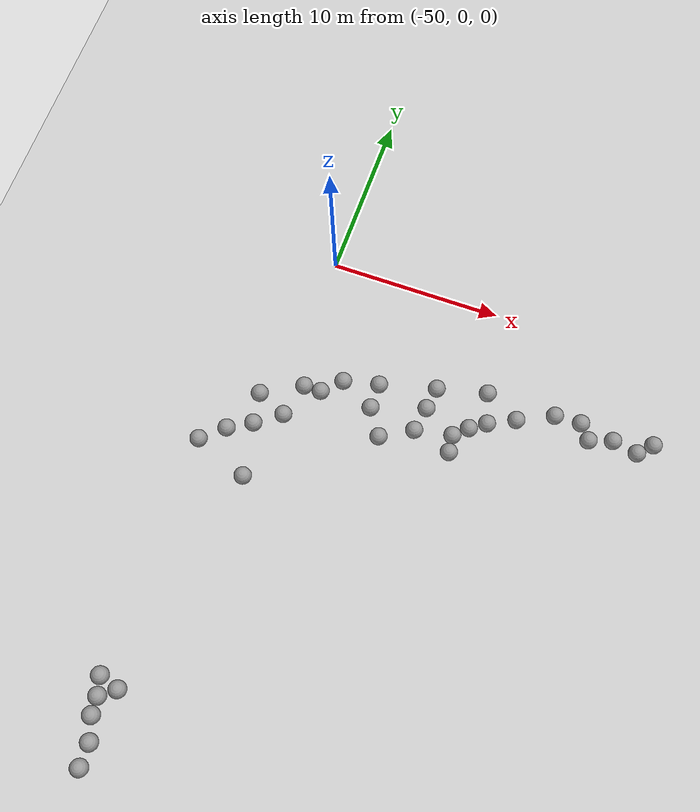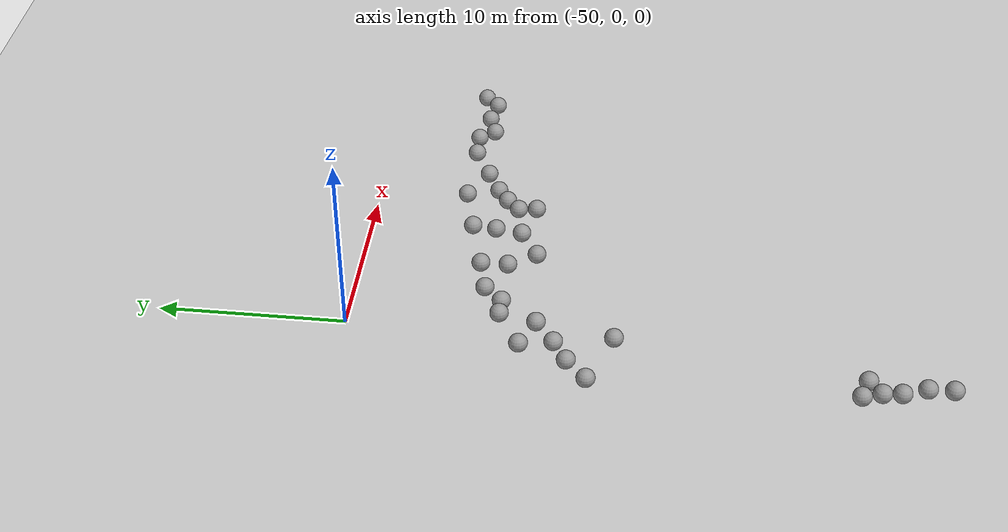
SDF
<sdf version="1.6">
 <world name="default">
  <model name="ground_plane">
   <static>1</static>
   <link name="link">
    <collision name="collision">
     <geometry><plane><normal>0 0 1</normal><size>100 100</size></plane></geometry>
     <surface><friction><ode><mu>100</mu><mu2>50</mu2></ode></friction></surface>
    </collision>
    <visual name="visual">
     <cast_shadows>0</cast_shadows>
     <geometry><plane><normal>0 0 1</normal><size>100 100</size></plane></geometry>
     <material>
      <script><uri>file://media/materials/scripts/gazebo.material</uri><name>Gazebo/Grey</name></script>
     </material>
    </visual>
   </link>
  </model>
  <model name="unit_sphere_0_clone_60">
   <pose>-52.4564 -31.3153 0.5 0 -0 0</pose>
   <link name="link">
    <inertial>
     <mass>1</mass>
     <inertia><ixx>0.1</ixx><ixy>0</ixy><ixz>0</ixz><iyy>0.1</iyy><iyz>0</iyz><izz>0.1</izz></inertia>
    </inertial>
    <collision name="collision"><geometry><sphere><radius>0.5</radius></sphere></geometry></collision>
    <visual name="visual">
     <geometry><sphere><radius>0.5</radius></sphere></geometry>
     <material>
      <script><name>Gazebo/Grey</name><uri>file://media/materials/scripts/gazebo.material</uri></script>
     </material>
    </visual>
   </link>
  </model>
  <model name="unit_sphere_0_clone_62">
   <pose>-51.2221 -9.25132 0.5 0 -0 0</pose>
   <link name="link">
    <inertial>
     <mass>1</mass>
     <inertia><ixx>0.1</ixx><ixy>0</ixy><ixz>0</ixz><iyy>0.1</iyy><iyz>0</iyz><izz>0.1</izz></inertia>
    </inertial>
    <collision name="collision"><geometry><sphere><radius>0.5</radius></sphere></geometry></collision>
    <visual name="visual">
     <geometry><sphere><radius>0.5</radius></sphere></geometry>
     <material>
      <script><name>Gazebo/Grey</name><uri>file://media/materials/scripts/gazebo.material</uri></script>
     </material>
    </visual>
   </link>
  </model>
  <model name="unit_sphere_0_clone_63">
   <pose>-42.2363 -8.45977 0.5 0 -0 0</pose>
   <link name="link">
    <inertial>
     <mass>1</mass>
     <inertia><ixx>0.1</ixx><ixy>0</ixy><ixz>0</ixz><iyy>0.1</iyy><iyz>0</iyz><izz>0.1</izz></inertia>
    </inertial>
    <collision name="collision"><geometry><sphere><radius>0.5</radius></sphere></geometry></collision>
    <visual name="visual">
     <geometry><sphere><radius>0.5</radius></sphere></geometry>
     <material>
      <script><name>Gazebo/Grey</name><uri>file://media/materials/scripts/gazebo.material</uri></script>
     </material>
    </visual>
   </link>
  </model>
  <model name="unit_sphere_0_clone_64">
   <pose>-31.5345 -5.4075 0.5 0 -0 0</pose>
   <link name="link">
    <inertial>
     <mass>1</mass>
     <inertia><ixx>0.1</ixx><ixy>0</ixy><ixz>0</ixz><iyy>0.1</iyy><iyz>0</iyz><izz>0.1</izz></inertia>
    </inertial>
    <collision name="collision"><geometry><sphere><radius>0.5</radius></sphere></geometry></collision>
    <visual name="visual">
     <geometry><sphere><radius>0.5</radius></sphere></geometry>
     <material>
      <script><name>Gazebo/Grey</name><uri>file://media/materials/scripts/gazebo.material</uri></script>
     </material>
    </visual>
   </link>
  </model>
  <model name="unit_sphere_0_clone_83">
   <pose>-52.1969 -27.0734 0.5 -0.047099 0.051382 -0.026603</pose>
   <link name="link">
    <inertial>
     <mass>1</mass>
     <inertia><ixx>0.1</ixx><ixy>0</ixy><ixz>0</ixz><iyy>0.1</iyy><iyz>0</iyz><izz>0.1</izz></inertia>
    </inertial>
    <collision name="collision"><geometry><sphere><radius>0.5</radius></sphere></geometry></collision>
    <visual name="visual">
     <geometry><sphere><radius>0.5</radius></sphere></geometry>
     <material>
      <script><name>Gazebo/Grey</name><uri>file://media/materials/scripts/gazebo.material</uri></script>
     </material>
    </visual>
   </link>
  </model>
  <model name="unit_sphere_0_clone_86">
   <pose>-50.3317 -14.1295 0.5 0 -0 0</pose>
   <link name="link">
    <inertial>
     <mass>1</mass>
     <inertia><ixx>0.1</ixx><ixy>0</ixy><ixz>0</ixz><iyy>0.1</iyy><iyz>0</iyz><izz>0.1</izz></inertia>
    </inertial>
    <collision name="collision"><geometry><sphere><radius>0.5</radius></sphere></geometry></collision>
    <visual name="visual">
     <geometry><sphere><radius>0.5</radius></sphere></geometry>
     <material>
      <script><name>Gazebo/Grey</name><uri>file://media/materials/scripts/gazebo.material</uri></script>
     </material>
    </visual>
   </link>
  </model>
  <model name="unit_sphere_0_clone_87">
   <pose>-53.4685 -12.9146 0.5 0 -0 0</pose>
   <link name="link">
    <inertial>
     <mass>1</mass>
     <inertia><ixx>0.1</ixx><ixy>0</ixy><ixz>0</ixz><iyy>0.1</iyy><iyz>0</iyz><izz>0.1</izz></inertia>
    </inertial>
    <collision name="collision"><geometry><sphere><radius>0.5</radius></sphere></geometry></collision>
    <visual name="visual">
     <geometry><sphere><radius>0.5</radius></sphere></geometry>
     <material>
      <script><name>Gazebo/Grey</name><uri>file://media/materials/scripts/gazebo.material</uri></script>
     </material>
    </visual>
   </link>
  </model>
  <model name="unit_sphere_0_clone_88">
   <pose>-47 -7 0.5 0 -0 0</pose>
   <link name="link">
    <inertial>
     <mass>1</mass>
     <inertia><ixx>0.1</ixx><ixy>0</ixy><ixz>0</ixz><iyy>0.1</iyy><iyz>0</iyz><izz>0.1</izz></inertia>
    </inertial>
    <collision name="collision"><geometry><sphere><radius>0.5</radius></sphere></geometry></collision>
    <visual name="visual">
     <geometry><sphere><radius>0.5</radius></sphere></geometry>
     <material>
      <script><name>Gazebo/Grey</name><uri>file://media/materials/scripts/gazebo.material</uri></script>
     </material>
    </visual>
   </link>
  </model>
  <model name="unit_sphere_0_clone_89">
   <pose>-38.4946 -6.74665 0.5 0 -0 0</pose>
   <link name="link">
    <inertial>
     <mass>1</mass>
     <inertia><ixx>0.1</ixx><ixy>0</ixy><ixz>0</ixz><iyy>0.1</iyy><iyz>0</iyz><izz>0.1</izz></inertia>
    </inertial>
    <collision name="collision"><geometry><sphere><radius>0.5</radius></sphere></geometry></collision>
    <visual name="visual">
     <geometry><sphere><radius>0.5</radius></sphere></geometry>
     <material>
      <script><name>Gazebo/Grey</name><uri>file://media/materials/scripts/gazebo.material</uri></script>
     </material>
    </visual>
   </link>
  </model>
  <model name="unit_sphere_1_clone_67">
   <pose>-52.4909 -30 0.5 0 -0 0</pose>
   <link name="link">
    <inertial>
     <mass>1</mass>
     <inertia><ixx>0.1</ixx><ixy>0</ixy><ixz>0</ixz><iyy>0.1</iyy><iyz>0</iyz><izz>0.1</izz></inertia>
    </inertial>
    <collision name="collision"><geometry><sphere><radius>0.5</radius></sphere></geometry></collision>
    <visual name="visual">
     <geometry><sphere><radius>0.5</radius></sphere></geometry>
     <material>
      <script><name>Gazebo/Grey</name><uri>file://media/materials/scripts/gazebo.material</uri></script>
     </material>
    </visual>
   </link>
  </model>
  <model name="unit_sphere_1_clone_68">
   <pose>-52.9528 -28.7199 0.5 0.067409 -0.003802 0.032438</pose>
   <link name="link">
    <inertial>
     <mass>1</mass>
     <inertia><ixx>0.1</ixx><ixy>0</ixy><ixz>0</ixz><iyy>0.1</iyy><iyz>0</iyz><izz>0.1</izz></inertia>
    </inertial>
    <collision name="collision"><geometry><sphere><radius>0.5</radius></sphere></geometry></collision>
    <visual name="visual">
     <geometry><sphere><radius>0.5</radius></sphere></geometry>
     <material>
      <script><name>Gazebo/Grey</name><uri>file://media/materials/scripts/gazebo.material</uri></script>
     </material>
    </visual>
   </link>
  </model>
  <model name="unit_sphere_1_clone_69">
   <pose>-53.0493 -27.7225 0.5 0.064725 -0.04243 -0.014655</pose>
   <link name="link">
    <inertial>
     <mass>1</mass>
     <inertia><ixx>0.1</ixx><ixy>0</ixy><ixz>0</ixz><iyy>0.1</iyy><iyz>0</iyz><izz>0.1</izz></inertia>
    </inertial>
    <collision name="collision"><geometry><sphere><radius>0.5</radius></sphere></geometry></collision>
    <visual name="visual">
     <geometry><sphere><radius>0.5</radius></sphere></geometry>
     <material>
      <script><name>Gazebo/Grey</name><uri>file://media/materials/scripts/gazebo.material</uri></script>
     </material>
    </visual>
   </link>
  </model>
  <model name="unit_sphere_1_clone_70">
   <pose>-53.3476 -26.7083 0.5 -0.05891 -0.025703 -0.019517</pose>
   <link name="link">
    <inertial>
     <mass>1</mass>
     <inertia><ixx>0.1</ixx><ixy>0</ixy><ixz>0</ixz><iyy>0.1</iyy><iyz>0</iyz><izz>0.1</izz></inertia>
    </inertial>
    <collision name="collision"><geometry><sphere><radius>0.5</radius></sphere></geometry></collision>
    <visual name="visual">
     <geometry><sphere><radius>0.5</radius></sphere></geometry>
     <material>
      <script><name>Gazebo/Grey</name><uri>file://media/materials/scripts/gazebo.material</uri></script>
     </material>
    </visual>
   </link>
  </model>
  <model name="unit_sphere_1_clone_83">
   <pose>-52.2258 -11.8071 0.5 0 -0 0</pose>
   <link name="link">
    <inertial>
     <mass>1</mass>
     <inertia><ixx>0.1</ixx><ixy>0</ixy><ixz>0</ixz><iyy>0.1</iyy><iyz>0</iyz><izz>0.1</izz></inertia>
    </inertial>
    <collision name="collision"><geometry><sphere><radius>0.5</radius></sphere></geometry></collision>
    <visual name="visual">
     <geometry><sphere><radius>0.5</radius></sphere></geometry>
     <material>
      <script><name>Gazebo/Grey</name><uri>file://media/materials/scripts/gazebo.material</uri></script>
     </material>
    </visual>
   </link>
  </model>
  <model name="unit_sphere_1_clone_84">
   <pose>-50.917 -11.0366 0.5 0 -0 0</pose>
   <link name="link">
    <inertial>
     <mass>1</mass>
     <inertia><ixx>0.1</ixx><ixy>0</ixy><ixz>0</ixz><iyy>0.1</iyy><iyz>0</iyz><izz>0.1</izz></inertia>
    </inertial>
    <collision name="collision"><geometry><sphere><radius>0.5</radius></sphere></geometry></collision>
    <visual name="visual">
     <geometry><sphere><radius>0.5</radius></sphere></geometry>
     <material>
      <script><name>Gazebo/Grey</name><uri>file://media/materials/scripts/gazebo.material</uri></script>
     </material>
    </visual>
   </link>
  </model>
  <model name="unit_sphere_1_clone_85">
   <pose>-49.5056 -10 0.5 0 -0 0</pose>
   <link name="link">
    <inertial>
     <mass>1</mass>
     <inertia><ixx>0.1</ixx><ixy>0</ixy><ixz>0</ixz><iyy>0.1</iyy><iyz>0</iyz><izz>0.1</izz></inertia>
    </inertial>
    <collision name="collision"><geometry><sphere><radius>0.5</radius></sphere></geometry></collision>
    <visual name="visual">
     <geometry><sphere><radius>0.5</radius></sphere></geometry>
     <material>
      <script><name>Gazebo/Grey</name><uri>file://media/materials/scripts/gazebo.material</uri></script>
     </material>
    </visual>
   </link>
  </model>
  <model name="unit_sphere_1_clone_86">
   <pose>-48 -8 0.5 0 -0 0</pose>
   <link name="link">
    <inertial>
     <mass>1</mass>
     <inertia><ixx>0.1</ixx><ixy>0</ixy><ixz>0</ixz><iyy>0.1</iyy><iyz>0</iyz><izz>0.1</izz></inertia>
    </inertial>
    <collision name="collision"><geometry><sphere><radius>0.5</radius></sphere></geometry></collision>
    <visual name="visual">
     <geometry><sphere><radius>0.5</radius></sphere></geometry>
     <material>
      <script><name>Gazebo/Grey</name><uri>file://media/materials/scripts/gazebo.material</uri></script>
     </material>
    </visual>
   </link>
  </model>
  <model name="unit_sphere_1_clone_87">
   <pose>-49 -8 0.5 0 -0 0</pose>
   <link name="link">
    <inertial>
     <mass>1</mass>
     <inertia><ixx>0.1</ixx><ixy>0</ixy><ixz>0</ixz><iyy>0.1</iyy><iyz>0</iyz><izz>0.1</izz></inertia>
    </inertial>
    <collision name="collision"><geometry><sphere><radius>0.5</radius></sphere></geometry></collision>
    <visual name="visual">
     <geometry><sphere><radius>0.5</radius></sphere></geometry>
     <material>
      <script><name>Gazebo/Grey</name><uri>file://media/materials/scripts/gazebo.material</uri></script>
     </material>
    </visual>
   </link>
  </model>
  <model name="unit_sphere_1_clone_88">
   <pose>-45 -8 0.5 0 -0 0</pose>
   <link name="link">
    <inertial>
     <mass>1</mass>
     <inertia><ixx>0.1</ixx><ixy>0</ixy><ixz>0</ixz><iyy>0.1</iyy><iyz>0</iyz><izz>0.1</izz></inertia>
    </inertial>
    <collision name="collision"><geometry><sphere><radius>0.5</radius></sphere></geometry></collision>
    <visual name="visual">
     <geometry><sphere><radius>0.5</radius></sphere></geometry>
     <material>
      <script><name>Gazebo/Grey</name><uri>file://media/materials/scripts/gazebo.material</uri></script>
     </material>
    </visual>
   </link>
  </model>
  <model name="unit_sphere_1_clone_89">
   <pose>-45 -6.52624 0.5 0 -0 0</pose>
   <link name="link">
    <inertial>
     <mass>1</mass>
     <inertia><ixx>0.1</ixx><ixy>0</ixy><ixz>0</ixz><iyy>0.1</iyy><iyz>0</iyz><izz>0.1</izz></inertia>
    </inertial>
    <collision name="collision"><geometry><sphere><radius>0.5</radius></sphere></geometry></collision>
    <visual name="visual">
     <geometry><sphere><radius>0.5</radius></sphere></geometry>
     <material>
      <script><name>Gazebo/Grey</name><uri>file://media/materials/scripts/gazebo.material</uri></script>
     </material>
    </visual>
   </link>
  </model>
  <model name="unit_sphere_1_clone_90">
   <pose>-44 -9.48059 0.5 0 -0 0</pose>
   <link name="link">
    <inertial>
     <mass>1</mass>
     <inertia><ixx>0.1</ixx><ixy>0</ixy><ixz>0</ixz><iyy>0.1</iyy><iyz>0</iyz><izz>0.1</izz></inertia>
    </inertial>
    <collision name="collision"><geometry><sphere><radius>0.5</radius></sphere></geometry></collision>
    <visual name="visual">
     <geometry><sphere><radius>0.5</radius></sphere></geometry>
     <material>
      <script><name>Gazebo/Grey</name><uri>file://media/materials/scripts/gazebo.material</uri></script>
     </material>
    </visual>
   </link>
  </model>
  <model name="unit_sphere_1_clone_91">
   <pose>-42 -7 0.5 0 -0 0</pose>
   <link name="link">
    <inertial>
     <mass>1</mass>
     <inertia><ixx>0.1</ixx><ixy>0</ixy><ixz>0</ixz><iyy>0.1</iyy><iyz>0</iyz><izz>0.1</izz></inertia>
    </inertial>
    <collision name="collision"><geometry><sphere><radius>0.5</radius></sphere></geometry></collision>
    <visual name="visual">
     <geometry><sphere><radius>0.5</radius></sphere></geometry>
     <material>
      <script><name>Gazebo/Grey</name><uri>file://media/materials/scripts/gazebo.material</uri></script>
     </material>
    </visual>
   </link>
  </model>
  <model name="unit_sphere_1_clone_92">
   <pose>-39.3714 -7.34742 0.5 -0.024529 0.017906 -0.018975</pose>
   <link name="link">
    <inertial>
     <mass>1</mass>
     <inertia><ixx>0.1</ixx><ixy>0</ixy><ixz>0</ixz><iyy>0.1</iyy><iyz>0</iyz><izz>0.1</izz></inertia>
    </inertial>
    <collision name="collision"><geometry><sphere><radius>0.5</radius></sphere></geometry></collision>
    <visual name="visual">
     <geometry><sphere><radius>0.5</radius></sphere></geometry>
     <material>
      <script><name>Gazebo/Grey</name><uri>file://media/materials/scripts/gazebo.material</uri></script>
     </material>
    </visual>
   </link>
  </model>
  <model name="unit_sphere_1_clone_93">
   <pose>-40.1191 -8.05455 0.5 0.005742 -0.042316 -0.001716</pose>
   <link name="link">
    <inertial>
     <mass>1</mass>
     <inertia><ixx>0.1</ixx><ixy>0</ixy><ixz>0</ixz><iyy>0.1</iyy><iyz>0</iyz><izz>0.1</izz></inertia>
    </inertial>
    <collision name="collision"><geometry><sphere><radius>0.5</radius></sphere></geometry></collision>
    <visual name="visual">
     <geometry><sphere><radius>0.5</radius></sphere></geometry>
     <material>
      <script><name>Gazebo/Grey</name><uri>file://media/materials/scripts/gazebo.material</uri></script>
     </material>
    </visual>
   </link>
  </model>
  <model name="unit_sphere_1_clone_94">
   <pose>-39.9974 -9.06024 0.5 0.025412 -0.000329 0.017111</pose>
   <link name="link">
    <inertial>
     <mass>1</mass>
     <inertia><ixx>0.1</ixx><ixy>0</ixy><ixz>0</ixz><iyy>0.1</iyy><iyz>0</iyz><izz>0.1</izz></inertia>
    </inertial>
    <collision name="collision"><geometry><sphere><radius>0.5</radius></sphere></geometry></collision>
    <visual name="visual">
     <geometry><sphere><radius>0.5</radius></sphere></geometry>
     <material>
      <script><name>Gazebo/Grey</name><uri>file://media/materials/scripts/gazebo.material</uri></script>
     </material>
    </visual>
   </link>
  </model>
  <model name="unit_sphere_1_clone_95">
   <pose>-37 -6 0.5 0 -0 0</pose>
   <link name="link">
    <inertial>
     <mass>1</mass>
     <inertia><ixx>0.1</ixx><ixy>0</ixy><ixz>0</ixz><iyy>0.1</iyy><iyz>0</iyz><izz>0.1</izz></inertia>
    </inertial>
    <collision name="collision"><geometry><sphere><radius>0.5</radius></sphere></geometry></collision>
    <visual name="visual">
     <geometry><sphere><radius>0.5</radius></sphere></geometry>
     <material>
      <script><name>Gazebo/Grey</name><uri>file://media/materials/scripts/gazebo.material</uri></script>
     </material>
    </visual>
   </link>
  </model>
  <model name="unit_sphere_1_clone_96">
   <pose>-35.0267 -5.03814 0.5 0.015478 -0.010899 -7.9e-05</pose>
   <link name="link">
    <inertial>
     <mass>1</mass>
     <inertia><ixx>0.1</ixx><ixy>0</ixy><ixz>0</ixz><iyy>0.1</iyy><iyz>0</iyz><izz>0.1</izz></inertia>
    </inertial>
    <collision name="collision"><geometry><sphere><radius>0.5</radius></sphere></geometry></collision>
    <visual name="visual">
     <geometry><sphere><radius>0.5</radius></sphere></geometry>
     <material>
      <script><name>Gazebo/Grey</name><uri>file://media/materials/scripts/gazebo.material</uri></script>
     </material>
    </visual>
   </link>
  </model>
  <model name="unit_sphere_1_clone_97">
   <pose>-39 -5 0.5 0 -0 0</pose>
   <link name="link">
    <inertial>
     <mass>1</mass>
     <inertia><ixx>0.1</ixx><ixy>0</ixy><ixz>0</ixz><iyy>0.1</iyy><iyz>0</iyz><izz>0.1</izz></inertia>
    </inertial>
    <collision name="collision"><geometry><sphere><radius>0.5</radius></sphere></geometry></collision>
    <visual name="visual">
     <geometry><sphere><radius>0.5</radius></sphere></geometry>
     <material>
      <script><name>Gazebo/Grey</name><uri>file://media/materials/scripts/gazebo.material</uri></script>
     </material>
    </visual>
   </link>
  </model>
  <model name="unit_sphere_1_clone_98">
   <pose>-41.8241 -5.68601 0.5 0 -0 0</pose>
   <link name="link">
    <inertial>
     <mass>1</mass>
     <inertia><ixx>0.1</ixx><ixy>0</ixy><ixz>0</ixz><iyy>0.1</iyy><iyz>0</iyz><izz>0.1</izz></inertia>
    </inertial>
    <collision name="collision"><geometry><sphere><radius>0.5</radius></sphere></geometry></collision>
    <visual name="visual">
     <geometry><sphere><radius>0.5</radius></sphere></geometry>
     <material>
      <script><name>Gazebo/Grey</name><uri>file://media/materials/scripts/gazebo.material</uri></script>
     </material>
    </visual>
   </link>
  </model>
  <model name="unit_sphere_1_clone_99">
   <pose>-33.5089 -4.99149 0.5 0 -0 0</pose>
   <link name="link">
    <inertial>
     <mass>1</mass>
     <inertia><ixx>0.1</ixx><ixy>0</ixy><ixz>0</ixz><iyy>0.1</iyy><iyz>0</iyz><izz>0.1</izz></inertia>
    </inertial>
    <collision name="collision"><geometry><sphere><radius>0.5</radius></sphere></geometry></collision>
    <visual name="visual">
     <geometry><sphere><radius>0.5</radius></sphere></geometry>
     <material>
      <script><name>Gazebo/Grey</name><uri>file://media/materials/scripts/gazebo.material</uri></script>
     </material>
    </visual>
   </link>
  </model>
  <model name="unit_sphere_1_clone_100">
   <pose>-32.842 -5.82946 0.5 0 -0 0</pose>
   <link name="link">
    <inertial>
     <mass>1</mass>
     <inertia><ixx>0.1</ixx><ixy>0</ixy><ixz>0</ixz><iyy>0.1</iyy><iyz>0</iyz><izz>0.1</izz></inertia>
    </inertial>
    <collision name="collision"><geometry><sphere><radius>0.5</radius></sphere></geometry></collision>
    <visual name="visual">
     <geometry><sphere><radius>0.5</radius></sphere></geometry>
     <material>
      <script><name>Gazebo/Grey</name><uri>file://media/materials/scripts/gazebo.material</uri></script>
     </material>
    </visual>
   </link>
  </model>
  <model name="unit_sphere_1_clone_102">
   <pose>-30.0862 -5.67203 0.5 0.048379 -0.047822 -0.001157</pose>
   <link name="link">
    <inertial>
     <mass>1</mass>
     <inertia><ixx>0.1</ixx><ixy>0</ixy><ixz>0</ixz><iyy>0.1</iyy><iyz>0</iyz><izz>0.1</izz></inertia>
    </inertial>
    <collision name="collision"><geometry><sphere><radius>0.5</radius></sphere></geometry></collision>
    <visual name="visual">
     <geometry><sphere><radius>0.5</radius></sphere></geometry>
     <material>
      <script><name>Gazebo/Grey</name><uri>file://media/materials/scripts/gazebo.material</uri></script>
     </material>
    </visual>
   </link>
  </model>
  <model name="unit_sphere_1_clone_103">
   <pose>-29.3351 -4.91308 0.5 -0.048203 0.04765 -0.001149</pose>
   <link name="link">
    <inertial>
     <mass>1</mass>
     <inertia><ixx>0.1</ixx><ixy>0</ixy><ixz>0</ixz><iyy>0.1</iyy><iyz>0</iyz><izz>0.1</izz></inertia>
    </inertial>
    <collision name="collision"><geometry><sphere><radius>0.5</radius></sphere></geometry></collision>
    <visual name="visual">
     <geometry><sphere><radius>0.5</radius></sphere></geometry>
     <material>
      <script><name>Gazebo/Grey</name><uri>file://media/materials/scripts/gazebo.material</uri></script>
     </material>
    </visual>
   </link>
  </model>
 </world>
</sdf>
